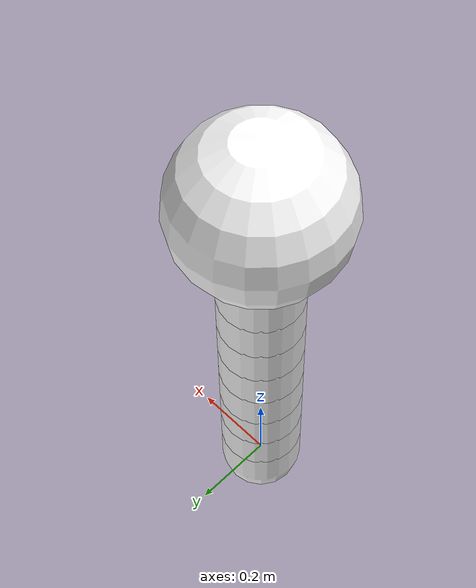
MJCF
<mujoco model="conkers">
  <compiler coordinate="local" inertiafromgeom="true"/>
  <default>
    <joint damping="0.05" stiffness="0.1"/>
    <geom contype="2" conaffinity="2" friction="1 0.1 0.1" rgba="0.7 0.7 0 1"/>
  </default>
  <option gravity="1e-5 0 -9.81" integrator="RK4" timestep="0.001"/>
  <size nstack="3000"/>
  <worldbody>
    <camera name="crgb" mode="fixed" pos="0 -4 0.0" euler="90 0 0"/>
    <body name="cart" pos="0 0 0">
      <joint axis="1 0 0" limited="true" margin="0.01" name="slider" pos="0 0 0" range="-20 20" stiffness="0" type="slide"/>
      <!--      the actuation in the conkers environment is identical to the one in cartpole with the cart
      attached to the top-most link/pole-->
      <geom name="cart" pos="0 0 0" quat="0.707 0 0.707 0" size="0.01 0.01" rgba="0 0 0 1" type="capsule" mass=".5"/>
      <!--      Begin links of the attached rope-->
      <body name="pole1" pos="0 0 0">
        <joint axis="0 1 0" name="hinge" pos="0 0 0" type="hinge" stiffness="0"/>
        <geom fromto="0 0 0 0 0 0.1" name="gpole1" rgba="1 1 1 1" size="0.1 0.05" mass="0.05" type="capsule"/>
        <body name="pole2" pos="0 0 0.1">
          <joint axis="0 1 0" name="hinge2" pos="0 0 0" type="hinge"/>
          <geom fromto="0 0 0 0 0 0.1" name="gpole2" rgba="1 1 1 1" size="0.1 0.05" mass="0.05" type="capsule"/>
          <body name="pole3" pos="0 0 0.1">
            <joint axis="0 1 0" name="hinge3" pos="0 0 0" type="hinge"/>
            <geom fromto="0 0 0 0 0 0.1" name="gpole3" rgba="1 1 1 1" size="0.1 0.05" mass="0.05" type="capsule"/>
            <body name="pole4" pos="0 0 0.1">
              <joint axis="0 1 0" name="hinge4" pos="0 0 0" type="hinge"/>
              <geom fromto="0 0 0 0 0 0.1" name="gpole4" rgba="1 1 1 1" size="0.1 0.05" mass="0.05" type="capsule"/>
               <body name="pole5" pos="0 0 0.1">
              <joint axis="0 1 0" name="hinge5" pos="0 0 0" type="hinge"/>
              <geom fromto="0 0 0 0 0 0.1" name="gpole5" rgba="1 1 1 1" size="0.1 0.05" mass="0.05" type="capsule"/>
                 <body name="pole6" pos="0 0 0.1">
                   <joint axis="0 1 0" name="hinge6" pos="0 0 0" type="hinge"/>
                   <geom fromto="0 0 0 0 0 0.1" name="gpole6" rgba="1 1 1 1" size="0.1 0.05" mass="0.05" type="capsule"/>
                     <body name="pole7" pos="0 0 0.1">
                      <joint axis="0 1 0" name="hinge7" pos="0 0 0" type="hinge"/>
                      <geom fromto="0 0 0 0 0 0.1" name="gpole7" rgba="1 1 1 1" size="0.1 0.05" mass="0.05" type="capsule"/>
                        <body name="pole8" pos="0 0 0.1">
                        <joint axis="0 1 0" name="hinge8" pos="0 0 0" type="hinge"/>
                        <geom fromto="0 0 0 0 0 0.1" name="gpole8" rgba="1 1 1 1" size="0.1 0.05" mass="0.05" type="capsule"/>
                        <body name="pole9" pos="0 0 0.1">
                          <joint axis="0 1 0" name="hinge9" pos="0 0 0" type="hinge"/>
                          <geom fromto="0 0 0 0 0 0.1" name="gpole9" rgba="1 1 1 1" size="0.1 0.05" mass="0.05" type="capsule"/>
                            <body name="pole10" pos="0 0 0.1">
                              <joint axis="0 1 0" name="hinge10" pos="0 0 0" type="hinge"/>
                              <geom fromto="0 0 0 0 0 0.1" name="gpole10" rgba="1 1 1 1" size="0.1 0.05" mass="0.05" type="capsule"/>
                              <body name="conker" pos="0 0 0.1">
                                <geom type="sphere" rgba="1 1 1 1" mass="1." size="0.2 0.2" name="gmass" contype="3" conaffinity="3"/>
<!--                                A tiny site location at the center of the conker/sphere/mass to compute cost while running env-->
                                <site name="tip" pos="0 0 0." size="0.01 0.01"/>
                              </body>
                            </body>
                          </body>
                        </body>
                      </body>
                      </body>
                    </body>
                  </body>
                </body>
            </body>
          </body>
        </body>
<!--    Target location rigidly attached to worldbody-->
    <body name="target" pos="-0.75 0 -0.75">
      <geom rgba="1 1 1 0" size="0.1 0.1" mass="1." type="sphere" name="gtarget" conaffinity="2" contype="2"/>
    </body>
  </worldbody>
  <actuator>
    <motor ctrllimited="true" ctrlrange="-1 1" gear="40" joint="slider" name="slide"/>
  </actuator>
</mujoco>
